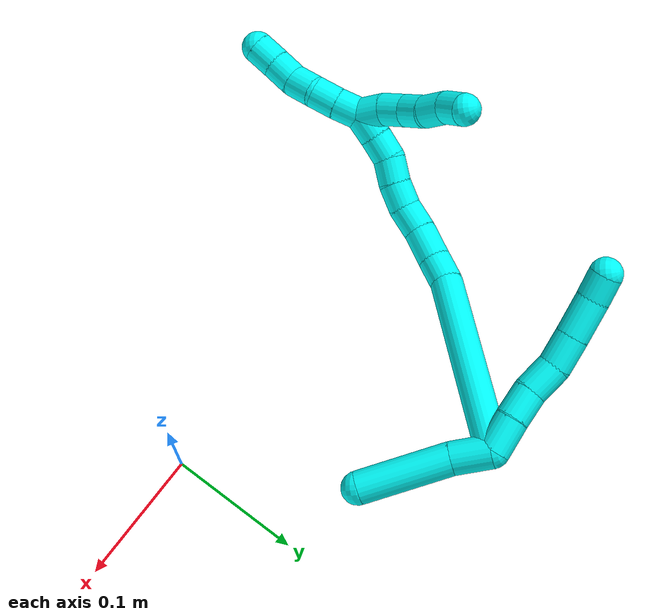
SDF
<sdf version="1.7">
 <world name="default">
  <model name="3">
   <static>0</static>
   <link name="3">
    <collision name="collision-cylinder-e_1_2_8">
     <pose>-0.007281 -0.008471 0.007402 0.852624 -0.574427 -0.266711</pose>
     <geometry><cylinder><radius>0.0125</radius><length>0.026801</length></cylinder></geometry>
     <surface>
      <friction><ode><mu>1.16</mu><mu2>1.16</mu2><slip1>0</slip1><slip2>0</slip2></ode></friction>
      <contact><ode><kp>1e+06</kp><kd>1</kd><max_vel>0</max_vel><min_depth>0.001</min_depth></ode></contact>
     </surface>
    </collision>
    <visual name="visual-cylinder-e_1_2_8">
     <pose>-0.007281 -0.008471 0.007402 0.852624 -0.574427 -0.266711</pose>
     <geometry><cylinder><radius>0.0125</radius><length>0.026801</length></cylinder></geometry>
     <material><ambient>0.003922 1 0.996078 1</ambient></material>
    </visual>
    <collision name="collision-cylinder-e_2_8_9">
     <pose>-0.021592 -0.023619 0.021275 0.801108 -0.647401 -0.282245</pose>
     <geometry><cylinder><radius>0.0125</radius><length>0.023312</length></cylinder></geometry>
     <surface>
      <friction><ode><mu>1.16</mu><mu2>1.16</mu2><slip1>0</slip1><slip2>0</slip2></ode></friction>
      <contact><ode><kp>1e+06</kp><kd>1</kd><max_vel>0</max_vel><min_depth>0.001</min_depth></ode></contact>
     </surface>
    </collision>
    <visual name="visual-cylinder-e_2_8_9">
     <pose>-0.021592 -0.023619 0.021275 0.801108 -0.647401 -0.282245</pose>
     <geometry><cylinder><radius>0.0125</radius><length>0.023312</length></cylinder></geometry>
     <material><ambient>0.003922 1 0.996078 1</ambient></material>
    </visual>
    <collision name="collision-cylinder-e_3_9_10">
     <pose>-0.03543 -0.035858 0.036433 0.569485 -0.583302 -0.175291</pose>
     <geometry><cylinder><radius>0.0125</radius><length>0.024719</length></cylinder></geometry>
     <surface>
      <friction><ode><mu>1.16</mu><mu2>1.16</mu2><slip1>0</slip1><slip2>0</slip2></ode></friction>
      <contact><ode><kp>1e+06</kp><kd>1</kd><max_vel>0</max_vel><min_depth>0.001</min_depth></ode></contact>
     </surface>
    </collision>
    <visual name="visual-cylinder-e_3_9_10">
     <pose>-0.03543 -0.035858 0.036433 0.569485 -0.583302 -0.175291</pose>
     <geometry><cylinder><radius>0.0125</radius><length>0.024719</length></cylinder></geometry>
     <material><ambient>0.003922 1 0.996078 1</ambient></material>
    </visual>
    <collision name="collision-cylinder-e_4_10_11">
     <pose>-0.047519 -0.049805 0.052509 0.848463 -0.441538 -0.202038</pose>
     <geometry><cylinder><radius>0.0125</radius><length>0.024721</length></cylinder></geometry>
     <surface>
      <friction><ode><mu>1.16</mu><mu2>1.16</mu2><slip1>0</slip1><slip2>0</slip2></ode></friction>
      <contact><ode><kp>1e+06</kp><kd>1</kd><max_vel>0</max_vel><min_depth>0.001</min_depth></ode></contact>
     </surface>
    </collision>
    <visual name="visual-cylinder-e_4_10_11">
     <pose>-0.047519 -0.049805 0.052509 0.848463 -0.441538 -0.202038</pose>
     <geometry><cylinder><radius>0.0125</radius><length>0.024721</length></cylinder></geometry>
     <material><ambient>0.003922 1 0.996078 1</ambient></material>
    </visual>
    <collision name="collision-cylinder-e_5_11_12">
     <pose>-0.058776 -0.068832 0.068867 0.870521 -0.405495 -0.190604</pose>
     <geometry><cylinder><radius>0.0125</radius><length>0.030294</length></cylinder></geometry>
     <surface>
      <friction><ode><mu>1.16</mu><mu2>1.16</mu2><slip1>0</slip1><slip2>0</slip2></ode></friction>
      <contact><ode><kp>1e+06</kp><kd>1</kd><max_vel>0</max_vel><min_depth>0.001</min_depth></ode></contact>
     </surface>
    </collision>
    <visual name="visual-cylinder-e_5_11_12">
     <pose>-0.058776 -0.068832 0.068867 0.870521 -0.405495 -0.190604</pose>
     <geometry><cylinder><radius>0.0125</radius><length>0.030294</length></cylinder></geometry>
     <material><ambient>0.003922 1 0.996078 1</ambient></material>
    </visual>
    <collision name="collision-cylinder-e_6_12_6">
     <pose>-0.067214 -0.087079 0.083973 0.89183 -0.24685 -0.118465</pose>
     <geometry><cylinder><radius>0.0125</radius><length>0.020153</length></cylinder></geometry>
     <surface>
      <friction><ode><mu>1.16</mu><mu2>1.16</mu2><slip1>0</slip1><slip2>0</slip2></ode></friction>
      <contact><ode><kp>1e+06</kp><kd>1</kd><max_vel>0</max_vel><min_depth>0.001</min_depth></ode></contact>
     </surface>
    </collision>
    <visual name="visual-cylinder-e_6_12_6">
     <pose>-0.067214 -0.087079 0.083973 0.89183 -0.24685 -0.118465</pose>
     <geometry><cylinder><radius>0.0125</radius><length>0.020153</length></cylinder></geometry>
     <material><ambient>0.003922 1 0.996078 1</ambient></material>
    </visual>
    <collision name="collision-cylinder-e_1_2_13">
     <pose>0.00394 -0.000682 -0.014368 3.09413 0.267321 2.79218</pose>
     <geometry><cylinder><radius>0.0125</radius><length>0.029828</length></cylinder></geometry>
     <surface>
      <friction><ode><mu>1.16</mu><mu2>1.16</mu2><slip1>0</slip1><slip2>0</slip2></ode></friction>
      <contact><ode><kp>1e+06</kp><kd>1</kd><max_vel>0</max_vel><min_depth>0.001</min_depth></ode></contact>
     </surface>
    </collision>
    <visual name="visual-cylinder-e_1_2_13">
     <pose>0.00394 -0.000682 -0.014368 3.09413 0.267321 2.79218</pose>
     <geometry><cylinder><radius>0.0125</radius><length>0.029828</length></cylinder></geometry>
     <material><ambient>0.003922 1 0.996078 1</ambient></material>
    </visual>
    <collision name="collision-cylinder-e_2_13_5">
     <pose>0.02178 2.6e-05 -0.060921 -3.0984 0.407376 -2.93319</pose>
     <geometry><cylinder><radius>0.0125</radius><length>0.070172</length></cylinder></geometry>
     <surface>
      <friction><ode><mu>1.16</mu><mu2>1.16</mu2><slip1>0</slip1><slip2>0</slip2></ode></friction>
      <contact><ode><kp>1e+06</kp><kd>1</kd><max_vel>0</max_vel><min_depth>0.001</min_depth></ode></contact>
     </surface>
    </collision>
    <visual name="visual-cylinder-e_2_13_5">
     <pose>0.02178 2.6e-05 -0.060921 -3.0984 0.407376 -2.93319</pose>
     <geometry><cylinder><radius>0.0125</radius><length>0.070172</length></cylinder></geometry>
     <material><ambient>0.003922 1 0.996078 1</ambient></material>
    </visual>
    <collision name="collision-cylinder-e_1_2_14">
     <pose>-0.053611 -0.047763 -0.023244 2.02371 -0.790006 -1.17586</pose>
     <geometry><cylinder><radius>0.0125</radius><length>0.15094</length></cylinder></geometry>
     <surface>
      <friction><ode><mu>1.16</mu><mu2>1.16</mu2><slip1>0</slip1><slip2>0</slip2></ode></friction>
      <contact><ode><kp>1e+06</kp><kd>1</kd><max_vel>0</max_vel><min_depth>0.001</min_depth></ode></contact>
     </surface>
    </collision>
    <visual name="visual-cylinder-e_1_2_14">
     <pose>-0.053611 -0.047763 -0.023244 2.02371 -0.790006 -1.17586</pose>
     <geometry><cylinder><radius>0.0125</radius><length>0.15094</length></cylinder></geometry>
     <material><ambient>0.003922 1 0.996078 1</ambient></material>
    </visual>
    <collision name="collision-cylinder-e_2_14_15">
     <pose>-0.11222 -0.103696 -0.050972 2.07271 -0.49237 -0.802955</pose>
     <geometry><cylinder><radius>0.0125</radius><length>0.021149</length></cylinder></geometry>
     <surface>
      <friction><ode><mu>1.16</mu><mu2>1.16</mu2><slip1>0</slip1><slip2>0</slip2></ode></friction>
      <contact><ode><kp>1e+06</kp><kd>1</kd><max_vel>0</max_vel><min_depth>0.001</min_depth></ode></contact>
     </surface>
    </collision>
    <visual name="visual-cylinder-e_2_14_15">
     <pose>-0.11222 -0.103696 -0.050972 2.07271 -0.49237 -0.802955</pose>
     <geometry><cylinder><radius>0.0125</radius><length>0.021149</length></cylinder></geometry>
     <material><ambient>0.003922 1 0.996078 1</ambient></material>
    </visual>
    <collision name="collision-cylinder-e_3_15_16">
     <pose>-0.122734 -0.122653 -0.060552 2.01216 -0.432965 -0.668257</pose>
     <geometry><cylinder><radius>0.0125</radius><length>0.02629</length></cylinder></geometry>
     <surface>
      <friction><ode><mu>1.16</mu><mu2>1.16</mu2><slip1>0</slip1><slip2>0</slip2></ode></friction>
      <contact><ode><kp>1e+06</kp><kd>1</kd><max_vel>0</max_vel><min_depth>0.001</min_depth></ode></contact>
     </surface>
    </collision>
    <visual name="visual-cylinder-e_3_15_16">
     <pose>-0.122734 -0.122653 -0.060552 2.01216 -0.432965 -0.668257</pose>
     <geometry><cylinder><radius>0.0125</radius><length>0.02629</length></cylinder></geometry>
     <material><ambient>0.003922 1 0.996078 1</ambient></material>
    </visual>
    <collision name="collision-cylinder-e_4_16_17">
     <pose>-0.130577 -0.142961 -0.070084 2.00677 -0.218171 -0.340363</pose>
     <geometry><cylinder><radius>0.0125</radius><length>0.021512</length></cylinder></geometry>
     <surface>
      <friction><ode><mu>1.16</mu><mu2>1.16</mu2><slip1>0</slip1><slip2>0</slip2></ode></friction>
      <contact><ode><kp>1e+06</kp><kd>1</kd><max_vel>0</max_vel><min_depth>0.001</min_depth></ode></contact>
     </surface>
    </collision>
    <visual name="visual-cylinder-e_4_16_17">
     <pose>-0.130577 -0.142961 -0.070084 2.00677 -0.218171 -0.340363</pose>
     <geometry><cylinder><radius>0.0125</radius><length>0.021512</length></cylinder></geometry>
     <material><ambient>0.003922 1 0.996078 1</ambient></material>
    </visual>
    <collision name="collision-cylinder-e_5_17_18">
     <pose>-0.134479 -0.16218 -0.076427 1.7651 -0.157827 -0.191723</pose>
     <geometry><cylinder><radius>0.0125</radius><length>0.020022</length></cylinder></geometry>
     <surface>
      <friction><ode><mu>1.16</mu><mu2>1.16</mu2><slip1>0</slip1><slip2>0</slip2></ode></friction>
      <contact><ode><kp>1e+06</kp><kd>1</kd><max_vel>0</max_vel><min_depth>0.001</min_depth></ode></contact>
     </surface>
    </collision>
    <visual name="visual-cylinder-e_5_17_18">
     <pose>-0.134479 -0.16218 -0.076427 1.7651 -0.157827 -0.191723</pose>
     <geometry><cylinder><radius>0.0125</radius><length>0.020022</length></cylinder></geometry>
     <material><ambient>0.003922 1 0.996078 1</ambient></material>
    </visual>
    <collision name="collision-cylinder-e_6_18_19">
     <pose>-0.138359 -0.181605 -0.078771 1.61546 -0.232719 -0.24325</pose>
     <geometry><cylinder><radius>0.0125</radius><length>0.020008</length></cylinder></geometry>
     <surface>
      <friction><ode><mu>1.16</mu><mu2>1.16</mu2><slip1>0</slip1><slip2>0</slip2></ode></friction>
      <contact><ode><kp>1e+06</kp><kd>1</kd><max_vel>0</max_vel><min_depth>0.001</min_depth></ode></contact>
     </surface>
    </collision>
    <visual name="visual-cylinder-e_6_18_19">
     <pose>-0.138359 -0.181605 -0.078771 1.61546 -0.232719 -0.24325</pose>
     <geometry><cylinder><radius>0.0125</radius><length>0.020008</length></cylinder></geometry>
     <material><ambient>0.003922 1 0.996078 1</ambient></material>
    </visual>
    <collision name="collision-cylinder-e_7_19_20">
     <pose>-0.141205 -0.2008 -0.082402 1.89634 -0.053786 -0.074906</pose>
     <geometry><cylinder><radius>0.0125</radius><length>0.02002</length></cylinder></geometry>
     <surface>
      <friction><ode><mu>1.16</mu><mu2>1.16</mu2><slip1>0</slip1><slip2>0</slip2></ode></friction>
      <contact><ode><kp>1e+06</kp><kd>1</kd><max_vel>0</max_vel><min_depth>0.001</min_depth></ode></contact>
     </surface>
    </collision>
    <visual name="visual-cylinder-e_7_19_20">
     <pose>-0.141205 -0.2008 -0.082402 1.89634 -0.053786 -0.074906</pose>
     <geometry><cylinder><radius>0.0125</radius><length>0.02002</length></cylinder></geometry>
     <material><ambient>0.003922 1 0.996078 1</ambient></material>
    </visual>
    <collision name="collision-cylinder-e_8_20_1">
     <pose>-0.14117 -0.219779 -0.088737 1.88956 0.057101 0.078955</pose>
     <geometry><cylinder><radius>0.0125</radius><length>0.020059</length></cylinder></geometry>
     <surface>
      <friction><ode><mu>1.16</mu><mu2>1.16</mu2><slip1>0</slip1><slip2>0</slip2></ode></friction>
      <contact><ode><kp>1e+06</kp><kd>1</kd><max_vel>0</max_vel><min_depth>0.001</min_depth></ode></contact>
     </surface>
    </collision>
    <visual name="visual-cylinder-e_8_20_1">
     <pose>-0.14117 -0.219779 -0.088737 1.88956 0.057101 0.078955</pose>
     <geometry><cylinder><radius>0.0125</radius><length>0.020059</length></cylinder></geometry>
     <material><ambient>0.003922 1 0.996078 1</ambient></material>
    </visual>
    <collision name="collision-cylinder-e_1_1_21">
     <pose>-0.140566 -0.229306 -0.081875 0.001769 0.003188 3e-06</pose>
     <geometry><cylinder><radius>0.0125</radius><length>0.02</length></cylinder></geometry>
     <surface>
      <friction><ode><mu>1.16</mu><mu2>1.16</mu2><slip1>0</slip1><slip2>0</slip2></ode></friction>
      <contact><ode><kp>1e+06</kp><kd>1</kd><max_vel>0</max_vel><min_depth>0.001</min_depth></ode></contact>
     </surface>
    </collision>
    <visual name="visual-cylinder-e_1_1_21">
     <pose>-0.140566 -0.229306 -0.081875 0.001769 0.003188 3e-06</pose>
     <geometry><cylinder><radius>0.0125</radius><length>0.02</length></cylinder></geometry>
     <material><ambient>0.003922 1 0.996078 1</ambient></material>
    </visual>
    <collision name="collision-cylinder-e_2_21_22">
     <pose>-0.138749 -0.227386 -0.062228 -0.198244 0.179431 -0.017892</pose>
     <geometry><cylinder><radius>0.0125</radius><length>0.02</length></cylinder></geometry>
     <surface>
      <friction><ode><mu>1.16</mu><mu2>1.16</mu2><slip1>0</slip1><slip2>0</slip2></ode></friction>
      <contact><ode><kp>1e+06</kp><kd>1</kd><max_vel>0</max_vel><min_depth>0.001</min_depth></ode></contact>
     </surface>
    </collision>
    <visual name="visual-cylinder-e_2_21_22">
     <pose>-0.138749 -0.227386 -0.062228 -0.198244 0.179431 -0.017892</pose>
     <geometry><cylinder><radius>0.0125</radius><length>0.02</length></cylinder></geometry>
     <material><ambient>0.003922 1 0.996078 1</ambient></material>
    </visual>
    <collision name="collision-cylinder-e_3_22_23">
     <pose>-0.132915 -0.224301 -0.04351 -0.125727 0.416933 -0.02663</pose>
     <geometry><cylinder><radius>0.0125</radius><length>0.02</length></cylinder></geometry>
     <surface>
      <friction><ode><mu>1.16</mu><mu2>1.16</mu2><slip1>0</slip1><slip2>0</slip2></ode></friction>
      <contact><ode><kp>1e+06</kp><kd>1</kd><max_vel>0</max_vel><min_depth>0.001</min_depth></ode></contact>
     </surface>
    </collision>
    <visual name="visual-cylinder-e_3_22_23">
     <pose>-0.132915 -0.224301 -0.04351 -0.125727 0.416933 -0.02663</pose>
     <geometry><cylinder><radius>0.0125</radius><length>0.02</length></cylinder></geometry>
     <material><ambient>0.003922 1 0.996078 1</ambient></material>
    </visual>
    <collision name="collision-cylinder-e_4_23_24">
     <pose>-0.126421 -0.223595 -0.024753 0.045448 0.247 0.005643</pose>
     <geometry><cylinder><radius>0.0125</radius><length>0.02</length></cylinder></geometry>
     <surface>
      <friction><ode><mu>1.16</mu><mu2>1.16</mu2><slip1>0</slip1><slip2>0</slip2></ode></friction>
      <contact><ode><kp>1e+06</kp><kd>1</kd><max_vel>0</max_vel><min_depth>0.001</min_depth></ode></contact>
     </surface>
    </collision>
    <visual name="visual-cylinder-e_4_23_24">
     <pose>-0.126421 -0.223595 -0.024753 0.045448 0.247 0.005643</pose>
     <geometry><cylinder><radius>0.0125</radius><length>0.02</length></cylinder></geometry>
     <material><ambient>0.003922 1 0.996078 1</ambient></material>
    </visual>
    <collision name="collision-cylinder-e_5_24_4">
     <pose>-0.119091 -0.222785 -0.00643 -0.143797 0.510282 -0.037566</pose>
     <geometry><cylinder><radius>0.0125</radius><length>0.02</length></cylinder></geometry>
     <surface>
      <friction><ode><mu>1.16</mu><mu2>1.16</mu2><slip1>0</slip1><slip2>0</slip2></ode></friction>
      <contact><ode><kp>1e+06</kp><kd>1</kd><max_vel>0</max_vel><min_depth>0.001</min_depth></ode></contact>
     </surface>
    </collision>
    <visual name="visual-cylinder-e_5_24_4">
     <pose>-0.119091 -0.222785 -0.00643 -0.143797 0.510282 -0.037566</pose>
     <geometry><cylinder><radius>0.0125</radius><length>0.02</length></cylinder></geometry>
     <material><ambient>0.003922 1 0.996078 1</ambient></material>
    </visual>
    <collision name="collision-cylinder-e_1_1_25">
     <pose>-0.139763 -0.235383 -0.099759 2.48349 0.083554 0.243624</pose>
     <geometry><cylinder><radius>0.0125</radius><length>0.02</length></cylinder></geometry>
     <surface>
      <friction><ode><mu>1.16</mu><mu2>1.16</mu2><slip1>0</slip1><slip2>0</slip2></ode></friction>
      <contact><ode><kp>1e+06</kp><kd>1</kd><max_vel>0</max_vel><min_depth>0.001</min_depth></ode></contact>
     </surface>
    </collision>
    <visual name="visual-cylinder-e_1_1_25">
     <pose>-0.139763 -0.235383 -0.099759 2.48349 0.083554 0.243624</pose>
     <geometry><cylinder><radius>0.0125</radius><length>0.02</length></cylinder></geometry>
     <material><ambient>0.003922 1 0.996078 1</ambient></material>
    </visual>
    <collision name="collision-cylinder-e_2_25_26">
     <pose>-0.138189 -0.248068 -0.115128 2.41969 0.074085 0.19572</pose>
     <geometry><cylinder><radius>0.0125</radius><length>0.02</length></cylinder></geometry>
     <surface>
      <friction><ode><mu>1.16</mu><mu2>1.16</mu2><slip1>0</slip1><slip2>0</slip2></ode></friction>
      <contact><ode><kp>1e+06</kp><kd>1</kd><max_vel>0</max_vel><min_depth>0.001</min_depth></ode></contact>
     </surface>
    </collision>
    <visual name="visual-cylinder-e_2_25_26">
     <pose>-0.138189 -0.248068 -0.115128 2.41969 0.074085 0.19572</pose>
     <geometry><cylinder><radius>0.0125</radius><length>0.02</length></cylinder></geometry>
     <material><ambient>0.003922 1 0.996078 1</ambient></material>
    </visual>
    <collision name="collision-cylinder-e_3_26_27">
     <pose>-0.139532 -0.260226 -0.130654 2.53596 -0.209923 -0.650448</pose>
     <geometry><cylinder><radius>0.0125</radius><length>0.02</length></cylinder></geometry>
     <surface>
      <friction><ode><mu>1.16</mu><mu2>1.16</mu2><slip1>0</slip1><slip2>0</slip2></ode></friction>
      <contact><ode><kp>1e+06</kp><kd>1</kd><max_vel>0</max_vel><min_depth>0.001</min_depth></ode></contact>
     </surface>
    </collision>
    <visual name="visual-cylinder-e_3_26_27">
     <pose>-0.139532 -0.260226 -0.130654 2.53596 -0.209923 -0.650448</pose>
     <geometry><cylinder><radius>0.0125</radius><length>0.02</length></cylinder></geometry>
     <material><ambient>0.003922 1 0.996078 1</ambient></material>
    </visual>
    <collision name="collision-cylinder-e_4_27_28">
     <pose>-0.143209 -0.273442 -0.144937 2.25528 -0.159927 -0.334508</pose>
     <geometry><cylinder><radius>0.0125</radius><length>0.02</length></cylinder></geometry>
     <surface>
      <friction><ode><mu>1.16</mu><mu2>1.16</mu2><slip1>0</slip1><slip2>0</slip2></ode></friction>
      <contact><ode><kp>1e+06</kp><kd>1</kd><max_vel>0</max_vel><min_depth>0.001</min_depth></ode></contact>
     </surface>
    </collision>
    <visual name="visual-cylinder-e_4_27_28">
     <pose>-0.143209 -0.273442 -0.144937 2.25528 -0.159927 -0.334508</pose>
     <geometry><cylinder><radius>0.0125</radius><length>0.02</length></cylinder></geometry>
     <material><ambient>0.003922 1 0.996078 1</ambient></material>
    </visual>
    <collision name="collision-cylinder-e_5_28_3">
     <pose>-0.145489 -0.289003 -0.157255 2.22573 -0.068853 -0.139525</pose>
     <geometry><cylinder><radius>0.0125</radius><length>0.02</length></cylinder></geometry>
     <surface>
      <friction><ode><mu>1.16</mu><mu2>1.16</mu2><slip1>0</slip1><slip2>0</slip2></ode></friction>
      <contact><ode><kp>1e+06</kp><kd>1</kd><max_vel>0</max_vel><min_depth>0.001</min_depth></ode></contact>
     </surface>
    </collision>
    <visual name="visual-cylinder-e_5_28_3">
     <pose>-0.145489 -0.289003 -0.157255 2.22573 -0.068853 -0.139525</pose>
     <geometry><cylinder><radius>0.0125</radius><length>0.02</length></cylinder></geometry>
     <material><ambient>0.003922 1 0.996078 1</ambient></material>
    </visual>
    <collision name="collision-sphere-3">
     <pose>-0.146177 -0.296915 -0.163332 0 -0 0</pose>
     <geometry><sphere><radius>0.0125</radius></sphere></geometry>
     <surface>
      <friction><ode><mu>1.16</mu><mu2>1.16</mu2><slip1>0</slip1><slip2>0</slip2></ode></friction>
      <contact><ode><kp>1e+06</kp><kd>1</kd><max_vel>0</max_vel><min_depth>0.001</min_depth></ode></contact>
     </surface>
    </collision>
    <visual name="visual-sphere-3">
     <pose>-0.146177 -0.296915 -0.163332 0 -0 0</pose>
     <geometry><sphere><radius>0.0125</radius></sphere></geometry>
     <material><ambient>0.003922 1 0.996078 1</ambient></material>
    </visual>
    <collision name="collision-sphere-28">
     <pose>-0.144801 -0.281091 -0.151179 0 -0 0</pose>
     <geometry><sphere><radius>0.0125</radius></sphere></geometry>
     <surface>
      <friction><ode><mu>1.16</mu><mu2>1.16</mu2><slip1>0</slip1><slip2>0</slip2></ode></friction>
      <contact><ode><kp>1e+06</kp><kd>1</kd><max_vel>0</max_vel><min_depth>0.001</min_depth></ode></contact>
     </surface>
    </collision>
    <visual name="visual-sphere-28">
     <pose>-0.144801 -0.281091 -0.151179 0 -0 0</pose>
     <geometry><sphere><radius>0.0125</radius></sphere></geometry>
     <material><ambient>0.003922 1 0.996078 1</ambient></material>
    </visual>
    <collision name="collision-sphere-27">
     <pose>-0.141616 -0.265793 -0.138695 0 -0 0</pose>
     <geometry><sphere><radius>0.0125</radius></sphere></geometry>
     <surface>
      <friction><ode><mu>1.16</mu><mu2>1.16</mu2><slip1>0</slip1><slip2>0</slip2></ode></friction>
      <contact><ode><kp>1e+06</kp><kd>1</kd><max_vel>0</max_vel><min_depth>0.001</min_depth></ode></contact>
     </surface>
    </collision>
    <visual name="visual-sphere-27">
     <pose>-0.141616 -0.265793 -0.138695 0 -0 0</pose>
     <geometry><sphere><radius>0.0125</radius></sphere></geometry>
     <material><ambient>0.003922 1 0.996078 1</ambient></material>
    </visual>
    <collision name="collision-sphere-26">
     <pose>-0.137448 -0.254658 -0.122613 0 -0 0</pose>
     <geometry><sphere><radius>0.0125</radius></sphere></geometry>
     <surface>
      <friction><ode><mu>1.16</mu><mu2>1.16</mu2><slip1>0</slip1><slip2>0</slip2></ode></friction>
      <contact><ode><kp>1e+06</kp><kd>1</kd><max_vel>0</max_vel><min_depth>0.001</min_depth></ode></contact>
     </surface>
    </collision>
    <visual name="visual-sphere-26">
     <pose>-0.137448 -0.254658 -0.122613 0 -0 0</pose>
     <geometry><sphere><radius>0.0125</radius></sphere></geometry>
     <material><ambient>0.003922 1 0.996078 1</ambient></material>
    </visual>
    <collision name="collision-sphere-25">
     <pose>-0.138929 -0.241478 -0.107643 0 -0 0</pose>
     <geometry><sphere><radius>0.0125</radius></sphere></geometry>
     <surface>
      <friction><ode><mu>1.16</mu><mu2>1.16</mu2><slip1>0</slip1><slip2>0</slip2></ode></friction>
      <contact><ode><kp>1e+06</kp><kd>1</kd><max_vel>0</max_vel><min_depth>0.001</min_depth></ode></contact>
     </surface>
    </collision>
    <visual name="visual-sphere-25">
     <pose>-0.138929 -0.241478 -0.107643 0 -0 0</pose>
     <geometry><sphere><radius>0.0125</radius></sphere></geometry>
     <material><ambient>0.003922 1 0.996078 1</ambient></material>
    </visual>
    <collision name="collision-sphere-4">
     <pose>-0.114207 -0.221535 0.002206 0 -0 0</pose>
     <geometry><sphere><radius>0.0125</radius></sphere></geometry>
     <surface>
      <friction><ode><mu>1.16</mu><mu2>1.16</mu2><slip1>0</slip1><slip2>0</slip2></ode></friction>
      <contact><ode><kp>1e+06</kp><kd>1</kd><max_vel>0</max_vel><min_depth>0.001</min_depth></ode></contact>
     </surface>
    </collision>
    <visual name="visual-sphere-4">
     <pose>-0.114207 -0.221535 0.002206 0 -0 0</pose>
     <geometry><sphere><radius>0.0125</radius></sphere></geometry>
     <material><ambient>0.003922 1 0.996078 1</ambient></material>
    </visual>
    <collision name="collision-sphere-24">
     <pose>-0.123976 -0.224036 -0.015066 0 -0 0</pose>
     <geometry><sphere><radius>0.0125</radius></sphere></geometry>
     <surface>
      <friction><ode><mu>1.16</mu><mu2>1.16</mu2><slip1>0</slip1><slip2>0</slip2></ode></friction>
      <contact><ode><kp>1e+06</kp><kd>1</kd><max_vel>0</max_vel><min_depth>0.001</min_depth></ode></contact>
     </surface>
    </collision>
    <visual name="visual-sphere-24">
     <pose>-0.123976 -0.224036 -0.015066 0 -0 0</pose>
     <geometry><sphere><radius>0.0125</radius></sphere></geometry>
     <material><ambient>0.003922 1 0.996078 1</ambient></material>
    </visual>
    <collision name="collision-sphere-23">
     <pose>-0.128866 -0.223155 -0.034439 0 -0 0</pose>
     <geometry><sphere><radius>0.0125</radius></sphere></geometry>
     <surface>
      <friction><ode><mu>1.16</mu><mu2>1.16</mu2><slip1>0</slip1><slip2>0</slip2></ode></friction>
      <contact><ode><kp>1e+06</kp><kd>1</kd><max_vel>0</max_vel><min_depth>0.001</min_depth></ode></contact>
     </surface>
    </collision>
    <visual name="visual-sphere-23">
     <pose>-0.128866 -0.223155 -0.034439 0 -0 0</pose>
     <geometry><sphere><radius>0.0125</radius></sphere></geometry>
     <material><ambient>0.003922 1 0.996078 1</ambient></material>
    </visual>
    <collision name="collision-sphere-22">
     <pose>-0.136965 -0.225448 -0.052582 0 -0 0</pose>
     <geometry><sphere><radius>0.0125</radius></sphere></geometry>
     <surface>
      <friction><ode><mu>1.16</mu><mu2>1.16</mu2><slip1>0</slip1><slip2>0</slip2></ode></friction>
      <contact><ode><kp>1e+06</kp><kd>1</kd><max_vel>0</max_vel><min_depth>0.001</min_depth></ode></contact>
     </surface>
    </collision>
    <visual name="visual-sphere-22">
     <pose>-0.136965 -0.225448 -0.052582 0 -0 0</pose>
     <geometry><sphere><radius>0.0125</radius></sphere></geometry>
     <material><ambient>0.003922 1 0.996078 1</ambient></material>
    </visual>
    <collision name="collision-sphere-21">
     <pose>-0.140534 -0.229323 -0.071875 0 -0 0</pose>
     <geometry><sphere><radius>0.0125</radius></sphere></geometry>
     <surface>
      <friction><ode><mu>1.16</mu><mu2>1.16</mu2><slip1>0</slip1><slip2>0</slip2></ode></friction>
      <contact><ode><kp>1e+06</kp><kd>1</kd><max_vel>0</max_vel><min_depth>0.001</min_depth></ode></contact>
     </surface>
    </collision>
    <visual name="visual-sphere-21">
     <pose>-0.140534 -0.229323 -0.071875 0 -0 0</pose>
     <geometry><sphere><radius>0.0125</radius></sphere></geometry>
     <material><ambient>0.003922 1 0.996078 1</ambient></material>
    </visual>
    <collision name="collision-sphere-1">
     <pose>-0.140598 -0.229288 -0.091875 0 -0 0</pose>
     <geometry><sphere><radius>0.0125</radius></sphere></geometry>
     <surface>
      <friction><ode><mu>1.16</mu><mu2>1.16</mu2><slip1>0</slip1><slip2>0</slip2></ode></friction>
      <contact><ode><kp>1e+06</kp><kd>1</kd><max_vel>0</max_vel><min_depth>0.001</min_depth></ode></contact>
     </surface>
    </collision>
    <visual name="visual-sphere-1">
     <pose>-0.140598 -0.229288 -0.091875 0 -0 0</pose>
     <geometry><sphere><radius>0.0125</radius></sphere></geometry>
     <material><ambient>0.003922 1 0.996078 1</ambient></material>
    </visual>
    <collision name="collision-sphere-12">
     <pose>-0.064751 -0.079475 0.077837 0 -0 0</pose>
     <geometry><sphere><radius>0.0125</radius></sphere></geometry>
     <surface>
      <friction><ode><mu>1.16</mu><mu2>1.16</mu2><slip1>0</slip1><slip2>0</slip2></ode></friction>
      <contact><ode><kp>1e+06</kp><kd>1</kd><max_vel>0</max_vel><min_depth>0.001</min_depth></ode></contact>
     </surface>
    </collision>
    <visual name="visual-sphere-12">
     <pose>-0.064751 -0.079475 0.077837 0 -0 0</pose>
     <geometry><sphere><radius>0.0125</radius></sphere></geometry>
     <material><ambient>0.003922 1 0.996078 1</ambient></material>
    </visual>
    <collision name="collision-sphere-11">
     <pose>-0.052801 -0.058189 0.059898 0 -0 0</pose>
     <geometry><sphere><radius>0.0125</radius></sphere></geometry>
     <surface>
      <friction><ode><mu>1.16</mu><mu2>1.16</mu2><slip1>0</slip1><slip2>0</slip2></ode></friction>
      <contact><ode><kp>1e+06</kp><kd>1</kd><max_vel>0</max_vel><min_depth>0.001</min_depth></ode></contact>
     </surface>
    </collision>
    <visual name="visual-sphere-11">
     <pose>-0.052801 -0.058189 0.059898 0 -0 0</pose>
     <geometry><sphere><radius>0.0125</radius></sphere></geometry>
     <material><ambient>0.003922 1 0.996078 1</ambient></material>
    </visual>
    <collision name="collision-sphere-10">
     <pose>-0.042237 -0.041421 0.045121 0 -0 0</pose>
     <geometry><sphere><radius>0.0125</radius></sphere></geometry>
     <surface>
      <friction><ode><mu>1.16</mu><mu2>1.16</mu2><slip1>0</slip1><slip2>0</slip2></ode></friction>
      <contact><ode><kp>1e+06</kp><kd>1</kd><max_vel>0</max_vel><min_depth>0.001</min_depth></ode></contact>
     </surface>
    </collision>
    <visual name="visual-sphere-10">
     <pose>-0.042237 -0.041421 0.045121 0 -0 0</pose>
     <geometry><sphere><radius>0.0125</radius></sphere></geometry>
     <material><ambient>0.003922 1 0.996078 1</ambient></material>
    </visual>
    <collision name="collision-sphere-9">
     <pose>-0.028622 -0.030296 0.027745 0 -0 0</pose>
     <geometry><sphere><radius>0.0125</radius></sphere></geometry>
     <surface>
      <friction><ode><mu>1.16</mu><mu2>1.16</mu2><slip1>0</slip1><slip2>0</slip2></ode></friction>
      <contact><ode><kp>1e+06</kp><kd>1</kd><max_vel>0</max_vel><min_depth>0.001</min_depth></ode></contact>
     </surface>
    </collision>
    <visual name="visual-sphere-9">
     <pose>-0.028622 -0.030296 0.027745 0 -0 0</pose>
     <geometry><sphere><radius>0.0125</radius></sphere></geometry>
     <material><ambient>0.003922 1 0.996078 1</ambient></material>
    </visual>
    <collision name="collision-sphere-2">
     <geometry><sphere><radius>0.0125</radius></sphere></geometry>
     <surface>
      <friction><ode><mu>1.16</mu><mu2>1.16</mu2><slip1>0</slip1><slip2>0</slip2></ode></friction>
      <contact><ode><kp>1e+06</kp><kd>1</kd><max_vel>0</max_vel><min_depth>0.001</min_depth></ode></contact>
     </surface>
    </collision>
    <visual name="visual-sphere-2">
     <geometry><sphere><radius>0.0125</radius></sphere></geometry>
     <material><ambient>0.003922 1 0.996078 1</ambient></material>
    </visual>
    <collision name="collision-sphere-19">
     <pose>-0.140666 -0.191329 -0.079205 0 -0 0</pose>
     <geometry><sphere><radius>0.0125</radius></sphere></geometry>
     <surface>
      <friction><ode><mu>1.16</mu><mu2>1.16</mu2><slip1>0</slip1><slip2>0</slip2></ode></friction>
      <contact><ode><kp>1e+06</kp><kd>1</kd><max_vel>0</max_vel><min_depth>0.001</min_depth></ode></contact>
     </surface>
    </collision>
    <visual name="visual-sphere-19">
     <pose>-0.140666 -0.191329 -0.079205 0 -0 0</pose>
     <geometry><sphere><radius>0.0125</radius></sphere></geometry>
     <material><ambient>0.003922 1 0.996078 1</ambient></material>
    </visual>
    <collision name="collision-sphere-8">
     <pose>-0.014562 -0.016942 0.014805 0 -0 0</pose>
     <geometry><sphere><radius>0.0125</radius></sphere></geometry>
     <surface>
      <friction><ode><mu>1.16</mu><mu2>1.16</mu2><slip1>0</slip1><slip2>0</slip2></ode></friction>
      <contact><ode><kp>1e+06</kp><kd>1</kd><max_vel>0</max_vel><min_depth>0.001</min_depth></ode></contact>
     </surface>
    </collision>
    <visual name="visual-sphere-8">
     <pose>-0.014562 -0.016942 0.014805 0 -0 0</pose>
     <geometry><sphere><radius>0.0125</radius></sphere></geometry>
     <material><ambient>0.003922 1 0.996078 1</ambient></material>
    </visual>
    <collision name="collision-sphere-6">
     <pose>-0.069676 -0.094683 0.090109 0 -0 0</pose>
     <geometry><sphere><radius>0.0125</radius></sphere></geometry>
     <surface>
      <friction><ode><mu>1.16</mu><mu2>1.16</mu2><slip1>0</slip1><slip2>0</slip2></ode></friction>
      <contact><ode><kp>1e+06</kp><kd>1</kd><max_vel>0</max_vel><min_depth>0.001</min_depth></ode></contact>
     </surface>
    </collision>
    <visual name="visual-sphere-6">
     <pose>-0.069676 -0.094683 0.090109 0 -0 0</pose>
     <geometry><sphere><radius>0.0125</radius></sphere></geometry>
     <material><ambient>0.003922 1 0.996078 1</ambient></material>
    </visual>
    <collision name="collision-sphere-13">
     <pose>0.007879 -0.001365 -0.028736 0 -0 0</pose>
     <geometry><sphere><radius>0.0125</radius></sphere></geometry>
     <surface>
      <friction><ode><mu>1.16</mu><mu2>1.16</mu2><slip1>0</slip1><slip2>0</slip2></ode></friction>
      <contact><ode><kp>1e+06</kp><kd>1</kd><max_vel>0</max_vel><min_depth>0.001</min_depth></ode></contact>
     </surface>
    </collision>
    <visual name="visual-sphere-13">
     <pose>0.007879 -0.001365 -0.028736 0 -0 0</pose>
     <geometry><sphere><radius>0.0125</radius></sphere></geometry>
     <material><ambient>0.003922 1 0.996078 1</ambient></material>
    </visual>
    <collision name="collision-sphere-5">
     <pose>0.035681 0.001417 -0.093105 0 -0 0</pose>
     <geometry><sphere><radius>0.0125</radius></sphere></geometry>
     <surface>
      <friction><ode><mu>1.16</mu><mu2>1.16</mu2><slip1>0</slip1><slip2>0</slip2></ode></friction>
      <contact><ode><kp>1e+06</kp><kd>1</kd><max_vel>0</max_vel><min_depth>0.001</min_depth></ode></contact>
     </surface>
    </collision>
    <visual name="visual-sphere-5">
     <pose>0.035681 0.001417 -0.093105 0 -0 0</pose>
     <geometry><sphere><radius>0.0125</radius></sphere></geometry>
     <material><ambient>0.003922 1 0.996078 1</ambient></material>
    </visual>
    <collision name="collision-sphere-14">
     <pose>-0.107221 -0.095526 -0.046489 0 -0 0</pose>
     <geometry><sphere><radius>0.0125</radius></sphere></geometry>
     <surface>
      <friction><ode><mu>1.16</mu><mu2>1.16</mu2><slip1>0</slip1><slip2>0</slip2></ode></friction>
      <contact><ode><kp>1e+06</kp><kd>1</kd><max_vel>0</max_vel><min_depth>0.001</min_depth></ode></contact>
     </surface>
    </collision>
    <visual name="visual-sphere-14">
     <pose>-0.107221 -0.095526 -0.046489 0 -0 0</pose>
     <geometry><sphere><radius>0.0125</radius></sphere></geometry>
     <material><ambient>0.003922 1 0.996078 1</ambient></material>
    </visual>
    <collision name="collision-sphere-15">
     <pose>-0.117219 -0.111865 -0.055455 0 -0 0</pose>
     <geometry><sphere><radius>0.0125</radius></sphere></geometry>
     <surface>
      <friction><ode><mu>1.16</mu><mu2>1.16</mu2><slip1>0</slip1><slip2>0</slip2></ode></friction>
      <contact><ode><kp>1e+06</kp><kd>1</kd><max_vel>0</max_vel><min_depth>0.001</min_depth></ode></contact>
     </surface>
    </collision>
    <visual name="visual-sphere-15">
     <pose>-0.117219 -0.111865 -0.055455 0 -0 0</pose>
     <geometry><sphere><radius>0.0125</radius></sphere></geometry>
     <material><ambient>0.003922 1 0.996078 1</ambient></material>
    </visual>
    <collision name="collision-sphere-16">
     <pose>-0.128249 -0.133442 -0.065649 0 -0 0</pose>
     <geometry><sphere><radius>0.0125</radius></sphere></geometry>
     <surface>
      <friction><ode><mu>1.16</mu><mu2>1.16</mu2><slip1>0</slip1><slip2>0</slip2></ode></friction>
      <contact><ode><kp>1e+06</kp><kd>1</kd><max_vel>0</max_vel><min_depth>0.001</min_depth></ode></contact>
     </surface>
    </collision>
    <visual name="visual-sphere-16">
     <pose>-0.128249 -0.133442 -0.065649 0 -0 0</pose>
     <geometry><sphere><radius>0.0125</radius></sphere></geometry>
     <material><ambient>0.003922 1 0.996078 1</ambient></material>
    </visual>
    <collision name="collision-sphere-17">
     <pose>-0.132905 -0.15248 -0.074518 0 -0 0</pose>
     <geometry><sphere><radius>0.0125</radius></sphere></geometry>
     <surface>
      <friction><ode><mu>1.16</mu><mu2>1.16</mu2><slip1>0</slip1><slip2>0</slip2></ode></friction>
      <contact><ode><kp>1e+06</kp><kd>1</kd><max_vel>0</max_vel><min_depth>0.001</min_depth></ode></contact>
     </surface>
    </collision>
    <visual name="visual-sphere-17">
     <pose>-0.132905 -0.15248 -0.074518 0 -0 0</pose>
     <geometry><sphere><radius>0.0125</radius></sphere></geometry>
     <material><ambient>0.003922 1 0.996078 1</ambient></material>
    </visual>
    <collision name="collision-sphere-18">
     <pose>-0.136052 -0.17188 -0.078336 0 -0 0</pose>
     <geometry><sphere><radius>0.0125</radius></sphere></geometry>
     <surface>
      <friction><ode><mu>1.16</mu><mu2>1.16</mu2><slip1>0</slip1><slip2>0</slip2></ode></friction>
      <contact><ode><kp>1e+06</kp><kd>1</kd><max_vel>0</max_vel><min_depth>0.001</min_depth></ode></contact>
     </surface>
    </collision>
    <visual name="visual-sphere-18">
     <pose>-0.136052 -0.17188 -0.078336 0 -0 0</pose>
     <geometry><sphere><radius>0.0125</radius></sphere></geometry>
     <material><ambient>0.003922 1 0.996078 1</ambient></material>
    </visual>
    <collision name="collision-sphere-20">
     <pose>-0.141743 -0.21027 -0.085599 0 -0 0</pose>
     <geometry><sphere><radius>0.0125</radius></sphere></geometry>
     <surface>
      <friction><ode><mu>1.16</mu><mu2>1.16</mu2><slip1>0</slip1><slip2>0</slip2></ode></friction>
      <contact><ode><kp>1e+06</kp><kd>1</kd><max_vel>0</max_vel><min_depth>0.001</min_depth></ode></contact>
     </surface>
    </collision>
    <visual name="visual-sphere-20">
     <pose>-0.141743 -0.21027 -0.085599 0 -0 0</pose>
     <geometry><sphere><radius>0.0125</radius></sphere></geometry>
     <material><ambient>0.003922 1 0.996078 1</ambient></material>
    </visual>
    <inertial>
     <pose>-0.07885 -0.115247 -0.039446 0 -0 0</pose>
     <mass>0.75</mass>
     <inertia>
      <ixx>-0.000131</ixx>
      <ixy>0</ixy>
      <ixz>0</ixz>
      <iyy>-6.4e-05</iyy>
      <iyz>0</iyz>
      <izz>0.000404</izz>
     </inertia>
    </inertial>
   </link>
   <pose>-0.133189 0.182283 0.060601 -0.852718 -0.77728 0.093298</pose>
  </model>
 </world>
</sdf>
